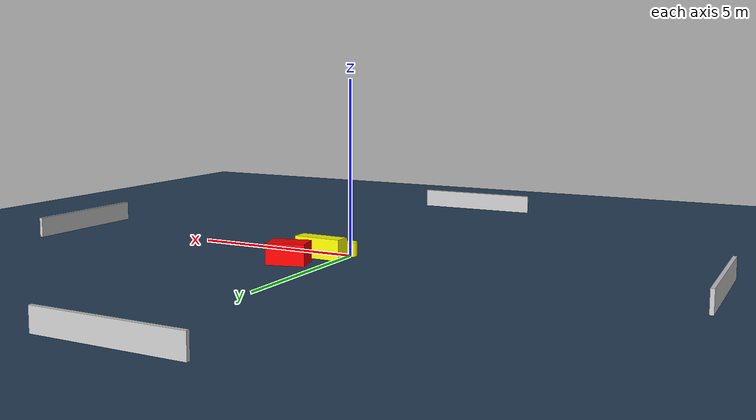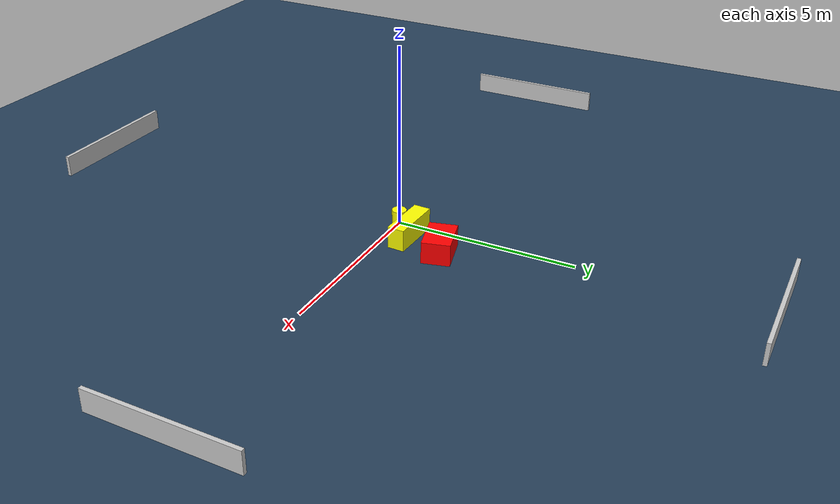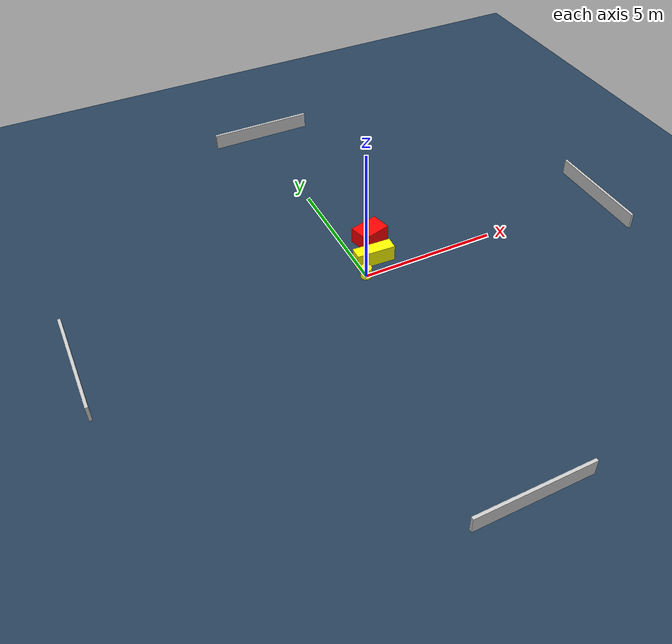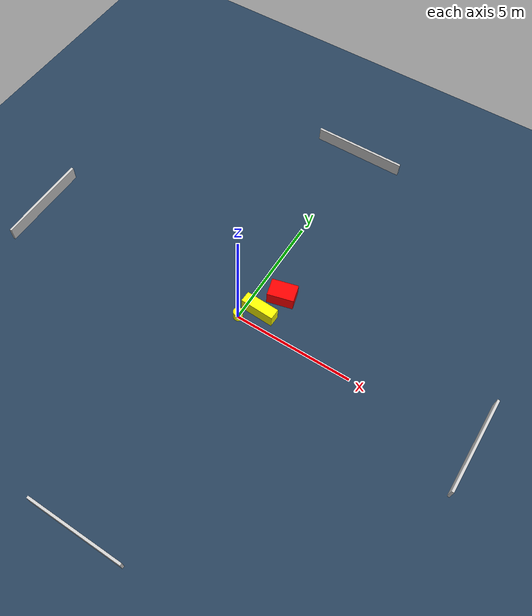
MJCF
<?xml version="1.0" ?>
<mujoco model="generated_environment">
  <option timestep="0.01" integrator="RK4" cone="elliptic"/>
  <default>
    <geom density="1"/>
  </default>
  <asset>
    <texture builtin="gradient" height="3072" name="skybox" rgb1="0.3 0.5 0.7" rgb2="0 0 0" type="skybox" width="512"/>
    <texture builtin="checker" height="300" name="groundplane" rgb1="0.2 0.3 0.4" rgb2="0.1 0.2 0.3" type="2d" width="300"/>
    <material name="groundplane" reflectance="0.2" texrepeat="5 5" texture="groundplane"/>
  </asset>
  <worldbody>
    <light dir="0 0 -1" directional="true" pos="0 0 1.5"/>
    <geom condim="3" friction="0.5 0.005 0.001" material="groundplane" name="floor" pos="0 0 0" size="0 0 0.05" type="plane"/>
    <body name="walls">
      <geom name="wall_1" condim="4" pos="-10.0 0.0 0.3" rgba="0.800000011920929 0.800000011920929 0.800000011920929 1.0" size="0.05 2.0 0.3" type="box"/>
      <geom name="wall_2" condim="4" pos="10.0 0.0 0.3" rgba="0.800000011920929 0.800000011920929 0.800000011920929 1.0" size="0.05 2.0 0.3" type="box"/>
      <geom name="wall_3" condim="4" pos="0.0 -10.0 0.3" rgba="0.800000011920929 0.800000011920929 0.800000011920929 1.0" size="2.0 0.05 0.3" type="box"/>
      <geom name="wall_4" condim="4" pos="0.0 10.0 0.3" rgba="0.800000011920929 0.800000011920929 0.800000011920929 1.0" size="2.0 0.05 0.3" type="box"/>
    </body>
    <body name="robot">
      <joint name="joint_x" type="slide" pos="0 0 0" axis="1 0 0"/>
      <joint name="joint_y" type="slide" pos="0 0 0" axis="0 1 0"/>
      <geom name="robot" type="cylinder" pos="0.0 0.0 0.2" size="0.2 0.2 0.0" mass="5.0" friction="1.0 0.005 0.0001" condim="4" rgba="1.0 1.0 0.0 1.0"/>
    </body>
    <body name="obstacle_1_movable">
      <geom name="obstacle_1_movable" condim="4" pos="0.6107031701392548 0.6145221710527842 0.3" euler="0 0 267.6436639955787" friction="0.0 0.005 0.001" rgba="1.0 1.0 0.0 1.0" size="0.23207861813413394 0.7121419654214545 0.3" type="box" mass="0.1"/>
      <joint type="free"/>
    </body>
    <body name="obstacle_2_static">
      <geom name="obstacle_2_static" condim="4" pos="1.0081892434391961 1.6972323804106435 0.3" euler="0 0 194.76462057001893" friction="0.0 0.005 0.001" rgba="1.0 0.0 0.0 1.0" size="0.5495660504009865 0.37836943331896955 0.3" type="box"/>
    </body>
  </worldbody>
  <actuator>
    <motor name="actuator_x" joint="joint_x" gear="1" ctrlrange="-1 1"/>
    <motor name="actuator_y" joint="joint_y" gear="1" ctrlrange="-1 1"/>
  </actuator>
</mujoco>
